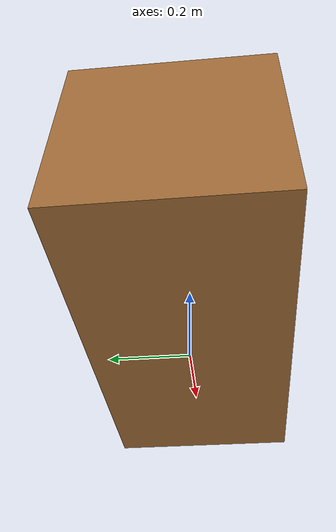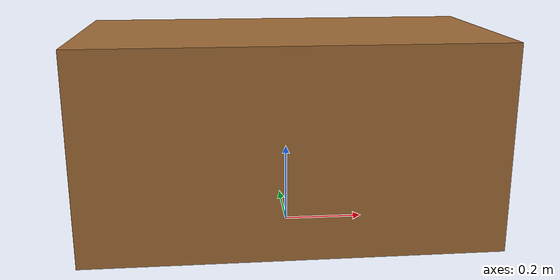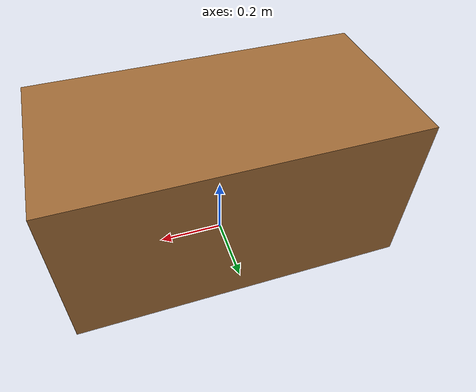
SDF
<?xml version="1.0"?>
<sdf version="1.6">
  <model name="bench">
    <static>true</static>
    <link name="link">
      <pose>0 0 0.25 0 0 0</pose>
      <collision name="collision">
        <geometry>
          <box>
            <size>1.0 0.5 0.5</size>
          </box>
        </geometry>
      </collision>
      <visual name="visual">
        <geometry>
          <box>
            <size>1.0 0.5 0.5</size>
          </box>
        </geometry>
        <material>
          <ambient>0.6 0.4 0.2 1</ambient>
          <diffuse>0.6 0.4 0.2 1</diffuse>
        </material>
      </visual>
    </link>
  </model>
</sdf>
